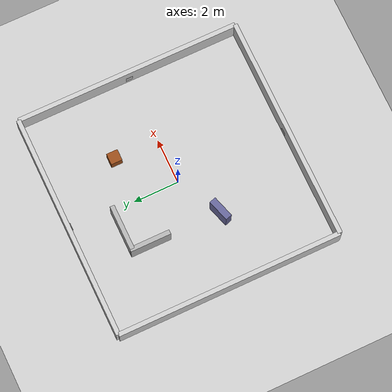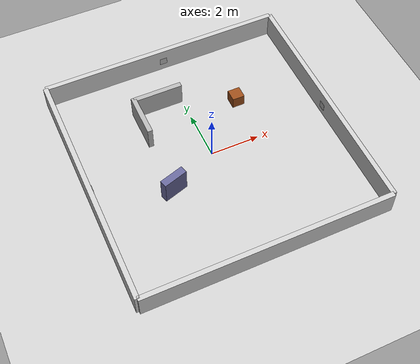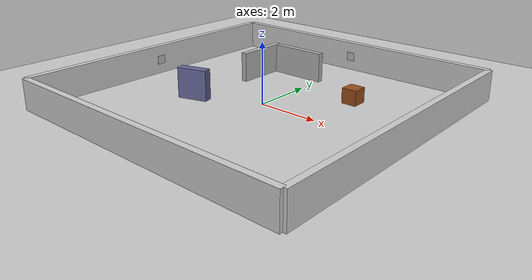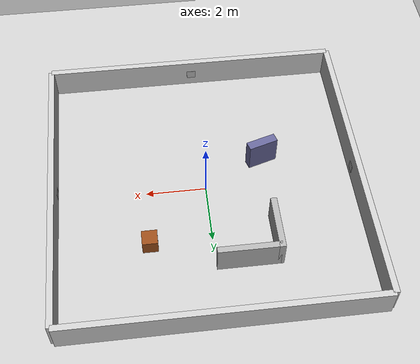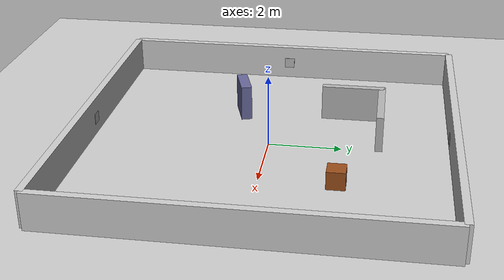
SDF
<?xml version="1.0" ?>
<sdf version="1.6">
  <world name="aruco_world">

    <!-- Physics — reduced rate for stable clock on slower systems -->
    <physics type="ode">
      <real_time_update_rate>200.0</real_time_update_rate>
      <max_step_size>0.005</max_step_size>
    </physics>

    <!-- Lighting -->
    <include><uri>model://sun</uri></include>
    <include><uri>model://ground_plane</uri></include>

    <!-- ── Boundary Walls ── -->
    <model name="walls">
      <static>true</static>
      <link name="wall_north">
        <pose>0 5 0.5 0 0 0</pose>
        <collision name="c"><geometry><box><size>10 0.2 1</size></box></geometry></collision>
        <visual name="v"><geometry><box><size>10 0.2 1</size></box></geometry>
          <material><ambient>0.8 0.8 0.8 1</ambient></material>
        </visual>
      </link>
      <link name="wall_south">
        <pose>0 -5 0.5 0 0 0</pose>
        <collision name="c"><geometry><box><size>10 0.2 1</size></box></geometry></collision>
        <visual name="v"><geometry><box><size>10 0.2 1</size></box></geometry>
          <material><ambient>0.8 0.8 0.8 1</ambient></material>
        </visual>
      </link>
      <link name="wall_east">
        <pose>5 0 0.5 0 0 1.5707</pose>
        <collision name="c"><geometry><box><size>10 0.2 1</size></box></geometry></collision>
        <visual name="v"><geometry><box><size>10 0.2 1</size></box></geometry>
          <material><ambient>0.8 0.8 0.8 1</ambient></material>
        </visual>
      </link>
      <link name="wall_west">
        <pose>-5 0 0.5 0 0 1.5707</pose>
        <collision name="c"><geometry><box><size>10 0.2 1</size></box></geometry></collision>
        <visual name="v"><geometry><box><size>10 0.2 1</size></box></geometry>
          <material><ambient>0.8 0.8 0.8 1</ambient></material>
        </visual>
      </link>
    </model>

    <!-- ── Obstacle Box ── -->
    <model name="box1">
      <static>true</static>
      <pose>2 2 0.25 0 0 0</pose>
      <link name="link">
        <collision name="c"><geometry><box><size>0.5 0.5 0.5</size></box></geometry></collision>
        <visual name="v"><geometry><box><size>0.5 0.5 0.5</size></box></geometry>
          <material><ambient>0.6 0.3 0.1 1</ambient></material>
        </visual>
      </link>
    </model>

    <!-- ── Obstacle Box 2 ── -->
    <model name="box2">
      <static>true</static>
      <pose>-2 -1 0.5 0 0 0.3</pose>
      <link name="link">
        <collision name="c"><geometry><box><size>1.0 0.3 1.0</size></box></geometry></collision>
        <visual name="v"><geometry><box><size>1.0 0.3 1.0</size></box></geometry>
          <material><ambient>0.4 0.4 0.6 1</ambient></material>
        </visual>
      </link>
    </model>

    <!-- ── L-shaped obstacle ── -->
    <model name="l_wall">
      <static>true</static>
      <link name="link_a">
        <pose>-1 3 0.5 0 0 0</pose>
        <collision name="c"><geometry><box><size>2.0 0.2 1.0</size></box></geometry></collision>
        <visual name="v"><geometry><box><size>2.0 0.2 1.0</size></box></geometry>
          <material><ambient>0.7 0.7 0.7 1</ambient></material>
        </visual>
      </link>
      <link name="link_b">
        <pose>-2 2.2 0.5 0 0 0</pose>
        <collision name="c"><geometry><box><size>0.2 1.8 1.0</size></box></geometry></collision>
        <visual name="v"><geometry><box><size>0.2 1.8 1.0</size></box></geometry>
          <material><ambient>0.7 0.7 0.7 1</ambient></material>
        </visual>
      </link>
    </model>

    <!-- ══ ArUco Marker 1 — North Wall (Turn Left) ══ -->
    <include>
      <uri>model://aruco_marker_1</uri>
      <name>aruco_marker_1</name>
      <pose>0 4.85 0.5 0 0 0</pose>
    </include>

    <!-- ══ ArUco Marker 2 — East Wall (Turn Right) ══ -->
    <include>
      <uri>model://aruco_marker_2</uri>
      <name>aruco_marker_2</name>
      <pose>4.85 0 0.5 0 0 1.5707</pose>
    </include>

    <!-- ══ ArUco Marker 3 — South Wall (Forward) ══ -->
    <include>
      <uri>model://aruco_marker_3</uri>
      <name>aruco_marker_3</name>
      <pose>0 -4.85 0.5 0 0 3.14159</pose>
    </include>

    <!-- ══ ArUco Marker 4 — West Wall (Backward) ══ -->
    <include>
      <uri>model://aruco_marker_4</uri>
      <name>aruco_marker_4</name>
      <pose>-4.85 0 0.5 0 0 -1.5707</pose>
    </include>

  </world>
</sdf>

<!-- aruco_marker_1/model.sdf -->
<sdf version="1.6">
  <model name="aruco_marker_1">
    <static>true</static>
    <link name="link">
      <visual name="visual">
        <geometry>
          <box>
            <size>0.3 0.01 0.3</size>
          </box>
        </geometry>
        <material>
          <script>
            <uri>model://aruco_marker_1/materials/scripts</uri>
            <uri>model://aruco_marker_1/materials/textures</uri>
            <name>aruco_marker_1/Marker</name>
          </script>
        </material>
      </visual>
      <collision name="collision">
        <geometry>
          <box>
            <size>0.3 0.01 0.3</size>
          </box>
        </geometry>
      </collision>
    </link>
  </model>
</sdf>

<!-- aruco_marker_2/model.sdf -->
<sdf version="1.6">
  <model name="aruco_marker_2">
    <static>true</static>
    <link name="link">
      <visual name="visual">
        <geometry>
          <box>
            <size>0.3 0.01 0.3</size>
          </box>
        </geometry>
        <material>
          <script>
            <uri>model://aruco_marker_2/materials/scripts</uri>
            <uri>model://aruco_marker_2/materials/textures</uri>
            <name>aruco_marker_2/Marker</name>
          </script>
        </material>
      </visual>
      <collision name="collision">
        <geometry>
          <box>
            <size>0.3 0.01 0.3</size>
          </box>
        </geometry>
      </collision>
    </link>
  </model>
</sdf>

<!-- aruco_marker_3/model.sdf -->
<sdf version="1.6">
  <model name="aruco_marker_3">
    <static>true</static>
    <link name="link">
      <visual name="visual">
        <geometry>
          <box>
            <size>0.3 0.01 0.3</size>
          </box>
        </geometry>
        <material>
          <script>
            <uri>model://aruco_marker_3/materials/scripts</uri>
            <uri>model://aruco_marker_3/materials/textures</uri>
            <name>aruco_marker_3/Marker</name>
          </script>
        </material>
      </visual>
      <collision name="collision">
        <geometry>
          <box>
            <size>0.3 0.01 0.3</size>
          </box>
        </geometry>
      </collision>
    </link>
  </model>
</sdf>

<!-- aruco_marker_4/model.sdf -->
<sdf version="1.6">
  <model name="aruco_marker_4">
    <static>true</static>
    <link name="link">
      <visual name="visual">
        <geometry>
          <box>
            <size>0.3 0.01 0.3</size>
          </box>
        </geometry>
        <material>
          <script>
            <uri>model://aruco_marker_4/materials/scripts</uri>
            <uri>model://aruco_marker_4/materials/textures</uri>
            <name>aruco_marker_4/Marker</name>
          </script>
        </material>
      </visual>
      <collision name="collision">
        <geometry>
          <box>
            <size>0.3 0.01 0.3</size>
          </box>
        </geometry>
      </collision>
    </link>
  </model>
</sdf>
